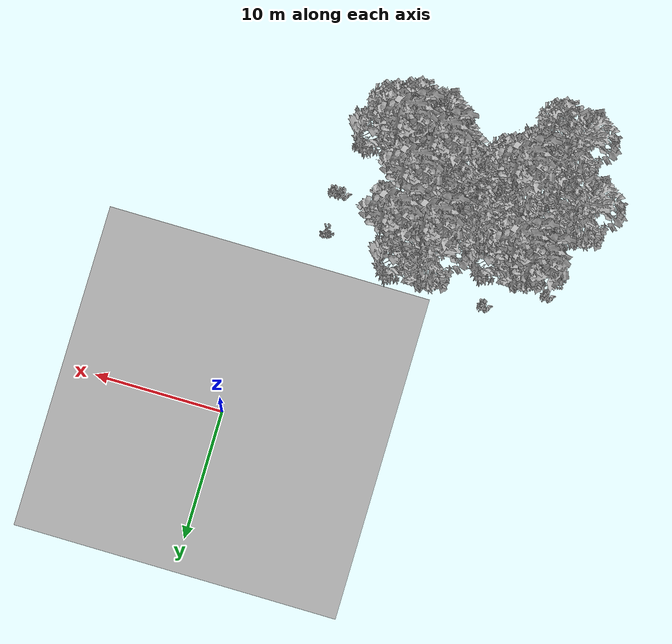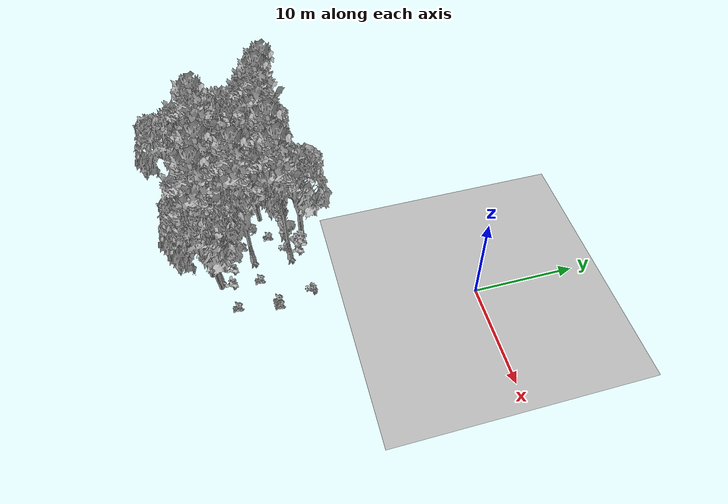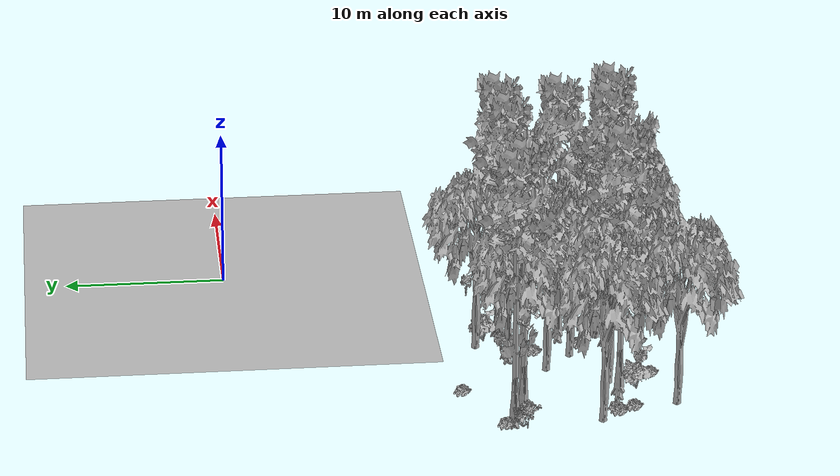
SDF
<sdf version="1.7">
 <world name="default">
  <model name="ground_plane">
   <static>1</static>
   <link name="link">
    <collision name="collision">
     <pose>-50 0 0 0 -0 0</pose>
     <geometry><plane><normal>0 0 1</normal><size>80 80</size></plane></geometry>
     <surface><contact><ode><min_depth>0.01</min_depth><max_vel>0</max_vel></ode></contact></surface>
    </collision>
    <visual name="grass">
     <cast_shadows>0</cast_shadows>
     <geometry>
      <mesh>
       <scale>0.46714285714285714 0.46714285714285714 0.1</scale>
       <uri>file://grass_plane/meshes/grass_plane.dae</uri>
      </mesh>
     </geometry>
    </visual>
   </link>
  </model>
  <model name="Tree 24">
   <static>1</static>
   <pose>-9.1710137024636 -20.092503621089026 0 1.57079 -0 0</pose>
   <link name="link">
    <collision name="collision">
     <geometry><mesh><scale>3.5 5 3.5</scale><uri>model://tree_9/meshes/tree_9.obj</uri></mesh></geometry>
    </collision>
    <visual name="visual">
     <geometry><mesh><scale>3.5 5 3.5</scale><uri>model://tree_9/meshes/tree_9.obj</uri></mesh></geometry>
    </visual>
   </link>
  </model>
  <model name="Tree 33">
   <static>1</static>
   <pose>-12.64890907517755 -20.355917272842632 0 1.57079 -0 0</pose>
   <link name="link">
    <collision name="collision">
     <geometry><mesh><scale>3.5 5 3.5</scale><uri>model://tree_2/meshes/tree_2.obj</uri></mesh></geometry>
    </collision>
    <visual name="visual">
     <geometry><mesh><scale>3.5 5 3.5</scale><uri>model://tree_2/meshes/tree_2.obj</uri></mesh></geometry>
    </visual>
   </link>
  </model>
  <model name="Tree 41">
   <static>1</static>
   <pose>-11.029143360589938 -14.790157387596643 0 1.57079 -0 0</pose>
   <link name="link">
    <collision name="collision">
     <geometry><mesh><scale>3.5 5 3.5</scale><uri>model://tree_2/meshes/tree_2.obj</uri></mesh></geometry>
    </collision>
    <visual name="visual">
     <geometry><mesh><scale>3.5 5 3.5</scale><uri>model://tree_2/meshes/tree_2.obj</uri></mesh></geometry>
    </visual>
   </link>
  </model>
  <model name="Tree 58">
   <static>1</static>
   <pose>-17.801461311813856 -16.740431640775615 0 1.57079 -0 0</pose>
   <link name="link">
    <collision name="collision">
     <geometry><mesh><scale>3.5 5 3.5</scale><uri>model://tree_2/meshes/tree_2.obj</uri></mesh></geometry>
    </collision>
    <visual name="visual">
     <geometry><mesh><scale>3.5 5 3.5</scale><uri>model://tree_2/meshes/tree_2.obj</uri></mesh></geometry>
    </visual>
   </link>
  </model>
  <model name="Tree 79">
   <static>1</static>
   <pose>-8.572607722709776 -24.250330869876954 0 1.57079 -0 0</pose>
   <link name="link">
    <collision name="collision">
     <geometry><mesh><scale>3.5 5 3.5</scale><uri>model://tree_2/meshes/tree_2.obj</uri></mesh></geometry>
    </collision>
    <visual name="visual">
     <geometry><mesh><scale>3.5 5 3.5</scale><uri>model://tree_2/meshes/tree_2.obj</uri></mesh></geometry>
    </visual>
   </link>
  </model>
  <model name="Tree 87">
   <static>1</static>
   <pose>-6.894416446961063 -23.557428661342517 0 1.57079 -0 0</pose>
   <link name="link">
    <collision name="collision">
     <geometry><mesh><scale>3.5 5 3.5</scale><uri>model://tree_2/meshes/tree_2.obj</uri></mesh></geometry>
    </collision>
    <visual name="visual">
     <geometry><mesh><scale>3.5 5 3.5</scale><uri>model://tree_2/meshes/tree_2.obj</uri></mesh></geometry>
    </visual>
   </link>
  </model>
  <model name="Tree 101">
   <static>1</static>
   <pose>-9.33557659200272 -23.09014046987345 0 1.57079 -0 0</pose>
   <link name="link">
    <collision name="collision">
     <geometry><mesh><scale>3.5 5 3.5</scale><uri>model://tree_2/meshes/tree_2.obj</uri></mesh></geometry>
    </collision>
    <visual name="visual">
     <geometry><mesh><scale>3.5 5 3.5</scale><uri>model://tree_2/meshes/tree_2.obj</uri></mesh></geometry>
    </visual>
   </link>
  </model>
  <model name="Tree 102">
   <static>1</static>
   <pose>-14.39660218122275 -18.684624331175456 0 1.57079 -0 0</pose>
   <link name="link">
    <collision name="collision">
     <geometry><mesh><scale>3.5 5 3.5</scale><uri>model://tree_2/meshes/tree_2.obj</uri></mesh></geometry>
    </collision>
    <visual name="visual">
     <geometry><mesh><scale>3.5 5 3.5</scale><uri>model://tree_2/meshes/tree_2.obj</uri></mesh></geometry>
    </visual>
   </link>
  </model>
  <model name="Tree 117">
   <static>1</static>
   <pose>-19.390288860899474 -25.796275933956878 0 1.57079 -0 0</pose>
   <link name="link">
    <collision name="collision">
     <geometry><mesh><scale>3.5 5 3.5</scale><uri>model://tree_2/meshes/tree_2.obj</uri></mesh></geometry>
    </collision>
    <visual name="visual">
     <geometry><mesh><scale>3.5 5 3.5</scale><uri>model://tree_2/meshes/tree_2.obj</uri></mesh></geometry>
    </visual>
   </link>
  </model>
  <model name="Tree 231">
   <static>1</static>
   <pose>-19.99678554687011 -15.983065546485939 0 1.57079 -0 0</pose>
   <link name="link">
    <collision name="collision">
     <geometry><mesh><scale>3.5 5 3.5</scale><uri>model://tree_9/meshes/tree_9.obj</uri></mesh></geometry>
    </collision>
    <visual name="visual">
     <geometry><mesh><scale>3.5 5 3.5</scale><uri>model://tree_9/meshes/tree_9.obj</uri></mesh></geometry>
    </visual>
   </link>
  </model>
  <model name="Tree 250">
   <static>1</static>
   <pose>-10.275904104290575 -22.325601694712045 0 1.57079 -0 0</pose>
   <link name="link">
    <collision name="collision">
     <geometry><mesh><scale>3.5 5 3.5</scale><uri>model://tree_2/meshes/tree_2.obj</uri></mesh></geometry>
    </collision>
    <visual name="visual">
     <geometry><mesh><scale>3.5 5 3.5</scale><uri>model://tree_2/meshes/tree_2.obj</uri></mesh></geometry>
    </visual>
   </link>
  </model>
  <model name="Tree 270">
   <static>1</static>
   <pose>-8.78503379170252 -23.611832265559343 0 1.57079 -0 0</pose>
   <link name="link">
    <collision name="collision">
     <geometry><mesh><scale>3.5 5 3.5</scale><uri>model://tree_2/meshes/tree_2.obj</uri></mesh></geometry>
    </collision>
    <visual name="visual">
     <geometry><mesh><scale>3.5 5 3.5</scale><uri>model://tree_2/meshes/tree_2.obj</uri></mesh></geometry>
    </visual>
   </link>
  </model>
  <model name="Tree 294">
   <static>1</static>
   <pose>-8.633826099618393 -16.468890223261717 0 1.57079 -0 0</pose>
   <link name="link">
    <collision name="collision">
     <geometry><mesh><scale>3.5 5 3.5</scale><uri>model://tree_9/meshes/tree_9.obj</uri></mesh></geometry>
    </collision>
    <visual name="visual">
     <geometry><mesh><scale>3.5 5 3.5</scale><uri>model://tree_9/meshes/tree_9.obj</uri></mesh></geometry>
    </visual>
   </link>
  </model>
  <model name="Tree 308">
   <static>1</static>
   <pose>-16.391896037122933 -22.16237967217836 0 1.57079 -0 0</pose>
   <link name="link">
    <collision name="collision">
     <geometry><mesh><scale>3.5 5 3.5</scale><uri>model://tree_2/meshes/tree_2.obj</uri></mesh></geometry>
    </collision>
    <visual name="visual">
     <geometry><mesh><scale>3.5 5 3.5</scale><uri>model://tree_2/meshes/tree_2.obj</uri></mesh></geometry>
    </visual>
   </link>
  </model>
  <model name="Tree 321">
   <static>1</static>
   <pose>-11.704759045104382 -16.664298390850778 0 1.57079 -0 0</pose>
   <link name="link">
    <collision name="collision">
     <geometry><mesh><scale>3.5 5 3.5</scale><uri>model://tree_9/meshes/tree_9.obj</uri></mesh></geometry>
    </collision>
    <visual name="visual">
     <geometry><mesh><scale>3.5 5 3.5</scale><uri>model://tree_9/meshes/tree_9.obj</uri></mesh></geometry>
    </visual>
   </link>
  </model>
  <model name="Tree 469">
   <static>1</static>
   <pose>-21.16434411884996 -21.09649220120322 0 1.57079 -0 0</pose>
   <link name="link">
    <collision name="collision">
     <geometry><mesh><scale>3.5 5 3.5</scale><uri>model://tree_2/meshes/tree_2.obj</uri></mesh></geometry>
    </collision>
    <visual name="visual">
     <geometry><mesh><scale>3.5 5 3.5</scale><uri>model://tree_2/meshes/tree_2.obj</uri></mesh></geometry>
    </visual>
   </link>
  </model>
  <model name="Tree 512">
   <static>1</static>
   <pose>-7.740288548615414 -23.51354434490979 0 1.57079 -0 0</pose>
   <link name="link">
    <collision name="collision">
     <geometry><mesh><scale>3.5 5 3.5</scale><uri>model://tree_9/meshes/tree_9.obj</uri></mesh></geometry>
    </collision>
    <visual name="visual">
     <geometry><mesh><scale>3.5 5 3.5</scale><uri>model://tree_9/meshes/tree_9.obj</uri></mesh></geometry>
    </visual>
   </link>
  </model>
  <model name="Tree 521">
   <static>1</static>
   <pose>-18.538329725983395 -16.705764341924194 0 1.57079 -0 0</pose>
   <link name="link">
    <collision name="collision">
     <geometry><mesh><scale>3.5 5 3.5</scale><uri>model://tree_9/meshes/tree_9.obj</uri></mesh></geometry>
    </collision>
    <visual name="visual">
     <geometry><mesh><scale>3.5 5 3.5</scale><uri>model://tree_9/meshes/tree_9.obj</uri></mesh></geometry>
    </visual>
   </link>
  </model>
  <model name="Tree 553">
   <static>1</static>
   <pose>-10.570265423997004 -22.866595124675282 0 1.57079 -0 0</pose>
   <link name="link">
    <collision name="collision">
     <geometry><mesh><scale>3.5 5 3.5</scale><uri>model://tree_9/meshes/tree_9.obj</uri></mesh></geometry>
    </collision>
    <visual name="visual">
     <geometry><mesh><scale>3.5 5 3.5</scale><uri>model://tree_9/meshes/tree_9.obj</uri></mesh></geometry>
    </visual>
   </link>
  </model>
  <model name="Tree 590">
   <static>1</static>
   <pose>-16.998174350092075 -22.673781446632127 0 1.57079 -0 0</pose>
   <link name="link">
    <collision name="collision">
     <geometry><mesh><scale>3.5 5 3.5</scale><uri>model://tree_9/meshes/tree_9.obj</uri></mesh></geometry>
    </collision>
    <visual name="visual">
     <geometry><mesh><scale>3.5 5 3.5</scale><uri>model://tree_9/meshes/tree_9.obj</uri></mesh></geometry>
    </visual>
   </link>
  </model>
  <model name="Bush 46">
   <static>1</static>
   <pose>-6.3153332011852115 -22.399869395493177 0 1.57079 -0 0</pose>
   <link name="link">
    <collision name="collision">
     <geometry><mesh><scale>2 2 2</scale><uri>model://bush_0/meshes/bush_0.obj</uri></mesh></geometry>
     <surface><contact><collide_without_contact>false</collide_without_contact></contact></surface>
    </collision>
    <visual name="visual">
     <geometry><mesh><scale>2 2 2</scale><uri>model://bush_0/meshes/bush_0.obj</uri></mesh></geometry>
    </visual>
   </link>
  </model>
  <model name="Bush 83">
   <static>1</static>
   <pose>-19.57994780664743 -22.162338095185312 0 1.57079 -0 0</pose>
   <link name="link">
    <collision name="collision">
     <geometry><mesh><scale>2 2 2</scale><uri>model://bush_2/meshes/bush_2.obj</uri></mesh></geometry>
     <surface><contact><collide_without_contact>false</collide_without_contact></contact></surface>
    </collision>
    <visual name="visual">
     <geometry><mesh><scale>2 2 2</scale><uri>model://bush_2/meshes/bush_2.obj</uri></mesh></geometry>
    </visual>
   </link>
  </model>
  <model name="Bush 86">
   <static>1</static>
   <pose>-7.996258949827276 -22.132548166640618 0 1.57079 -0 0</pose>
   <link name="link">
    <collision name="collision">
     <geometry><mesh><scale>2 2 2</scale><uri>model://bush_0/meshes/bush_0.obj</uri></mesh></geometry>
     <surface><contact><collide_without_contact>false</collide_without_contact></contact></surface>
    </collision>
    <visual name="visual">
     <geometry><mesh><scale>2 2 2</scale><uri>model://bush_0/meshes/bush_0.obj</uri></mesh></geometry>
    </visual>
   </link>
  </model>
  <model name="Bush 110">
   <static>1</static>
   <pose>-19.479811894968996 -23.231952553138477 0 1.57079 -0 0</pose>
   <link name="link">
    <collision name="collision">
     <geometry><mesh><scale>2 2 2</scale><uri>model://bush_2/meshes/bush_2.obj</uri></mesh></geometry>
     <surface><contact><collide_without_contact>false</collide_without_contact></contact></surface>
    </collision>
    <visual name="visual">
     <geometry><mesh><scale>2 2 2</scale><uri>model://bush_2/meshes/bush_2.obj</uri></mesh></geometry>
    </visual>
   </link>
  </model>
  <model name="Bush 132">
   <static>1</static>
   <pose>-11.154719339024929 -20.96943907301201 0 1.57079 -0 0</pose>
   <link name="link">
    <collision name="collision">
     <geometry><mesh><scale>2 2 2</scale><uri>model://bush_2/meshes/bush_2.obj</uri></mesh></geometry>
     <surface><contact><collide_without_contact>false</collide_without_contact></contact></surface>
    </collision>
    <visual name="visual">
     <geometry><mesh><scale>2 2 2</scale><uri>model://bush_2/meshes/bush_2.obj</uri></mesh></geometry>
    </visual>
   </link>
  </model>
  <model name="Bush 149">
   <static>1</static>
   <pose>-4.22271195580209 -22.367515695310345 0 1.57079 -0 0</pose>
   <link name="link">
    <collision name="collision">
     <geometry><mesh><scale>2 2 2</scale><uri>model://bush_2/meshes/bush_2.obj</uri></mesh></geometry>
     <surface><contact><collide_without_contact>false</collide_without_contact></contact></surface>
    </collision>
    <visual name="visual">
     <geometry><mesh><scale>2 2 2</scale><uri>model://bush_2/meshes/bush_2.obj</uri></mesh></geometry>
    </visual>
   </link>
  </model>
  <model name="Bush 179">
   <static>1</static>
   <pose>-15.320579386284287 -24.86145719086857 0 1.57079 -0 0</pose>
   <link name="link">
    <collision name="collision">
     <geometry><mesh><scale>2 2 2</scale><uri>model://bush_2/meshes/bush_2.obj</uri></mesh></geometry>
     <surface><contact><collide_without_contact>false</collide_without_contact></contact></surface>
    </collision>
    <visual name="visual">
     <geometry><mesh><scale>2 2 2</scale><uri>model://bush_2/meshes/bush_2.obj</uri></mesh></geometry>
    </visual>
   </link>
  </model>
  <model name="Bush 187">
   <static>1</static>
   <pose>-3.7083628858405078 -15.057437454211573 0 1.57079 -0 0</pose>
   <link name="link">
    <collision name="collision">
     <geometry><mesh><scale>2 2 2</scale><uri>model://bush_5/meshes/bush_5.obj</uri></mesh></geometry>
     <surface><contact><collide_without_contact>false</collide_without_contact></contact></surface>
    </collision>
    <visual name="visual">
     <geometry><mesh><scale>2 2 2</scale><uri>model://bush_5/meshes/bush_5.obj</uri></mesh></geometry>
    </visual>
   </link>
  </model>
  <model name="Bush 200">
   <static>1</static>
   <pose>-20.007395988574366 -22.2660796173089 0 1.57079 -0 0</pose>
   <link name="link">
    <collision name="collision">
     <geometry><mesh><scale>2 2 2</scale><uri>model://bush_2/meshes/bush_2.obj</uri></mesh></geometry>
     <surface><contact><collide_without_contact>false</collide_without_contact></contact></surface>
    </collision>
    <visual name="visual">
     <geometry><mesh><scale>2 2 2</scale><uri>model://bush_2/meshes/bush_2.obj</uri></mesh></geometry>
    </visual>
   </link>
  </model>
  <model name="Bush 207">
   <static>1</static>
   <pose>-11.369895861268638 -16.294120605426965 0 1.57079 -0 0</pose>
   <link name="link">
    <collision name="collision">
     <geometry><mesh><scale>2 2 2</scale><uri>model://bush_0/meshes/bush_0.obj</uri></mesh></geometry>
     <surface><contact><collide_without_contact>false</collide_without_contact></contact></surface>
    </collision>
    <visual name="visual">
     <geometry><mesh><scale>2 2 2</scale><uri>model://bush_0/meshes/bush_0.obj</uri></mesh></geometry>
    </visual>
   </link>
  </model>
  <model name="Bush 254">
   <static>1</static>
   <pose>-8.703942573176779 -15.546334479793344 0 1.57079 -0 0</pose>
   <link name="link">
    <collision name="collision">
     <geometry><mesh><scale>2 2 2</scale><uri>model://bush_0/meshes/bush_0.obj</uri></mesh></geometry>
     <surface><contact><collide_without_contact>false</collide_without_contact></contact></surface>
    </collision>
    <visual name="visual">
     <geometry><mesh><scale>2 2 2</scale><uri>model://bush_0/meshes/bush_0.obj</uri></mesh></geometry>
    </visual>
   </link>
  </model>
  <model name="Bush 270">
   <static>1</static>
   <pose>-11.868172113425775 -18.254348389613256 0 1.57079 -0 0</pose>
   <link name="link">
    <collision name="collision">
     <geometry><mesh><scale>2 2 2</scale><uri>model://bush_2/meshes/bush_2.obj</uri></mesh></geometry>
     <surface><contact><collide_without_contact>false</collide_without_contact></contact></surface>
    </collision>
    <visual name="visual">
     <geometry><mesh><scale>2 2 2</scale><uri>model://bush_2/meshes/bush_2.obj</uri></mesh></geometry>
    </visual>
   </link>
  </model>
  <model name="Bush 287">
   <static>1</static>
   <pose>-3.443582057321642 -18.499272465327312 0 1.57079 -0 0</pose>
   <link name="link">
    <collision name="collision">
     <geometry><mesh><scale>2 2 2</scale><uri>model://bush_2/meshes/bush_2.obj</uri></mesh></geometry>
     <surface><contact><collide_without_contact>false</collide_without_contact></contact></surface>
    </collision>
    <visual name="visual">
     <geometry><mesh><scale>2 2 2</scale><uri>model://bush_2/meshes/bush_2.obj</uri></mesh></geometry>
    </visual>
   </link>
  </model>
  <model name="Bush 298">
   <static>1</static>
   <pose>-6.813456797911812 -19.86442502382389 0 1.57079 -0 0</pose>
   <link name="link">
    <collision name="collision">
     <geometry><mesh><scale>2 2 2</scale><uri>model://bush_2/meshes/bush_2.obj</uri></mesh></geometry>
     <surface><contact><collide_without_contact>false</collide_without_contact></contact></surface>
    </collision>
    <visual name="visual">
     <geometry><mesh><scale>2 2 2</scale><uri>model://bush_2/meshes/bush_2.obj</uri></mesh></geometry>
    </visual>
   </link>
  </model>
  <model name="Bush 332">
   <static>1</static>
   <pose>-19.051655904329554 -16.898214775745668 0 1.57079 -0 0</pose>
   <link name="link">
    <collision name="collision">
     <geometry><mesh><scale>2 2 2</scale><uri>model://bush_2/meshes/bush_2.obj</uri></mesh></geometry>
     <surface><contact><collide_without_contact>false</collide_without_contact></contact></surface>
    </collision>
    <visual name="visual">
     <geometry><mesh><scale>2 2 2</scale><uri>model://bush_2/meshes/bush_2.obj</uri></mesh></geometry>
    </visual>
   </link>
  </model>
  <model name="Bush 390">
   <static>1</static>
   <pose>-16.697687563815244 -13.319450083240199 0 1.57079 -0 0</pose>
   <link name="link">
    <collision name="collision">
     <geometry><mesh><scale>2 2 2</scale><uri>model://bush_2/meshes/bush_2.obj</uri></mesh></geometry>
     <surface><contact><collide_without_contact>false</collide_without_contact></contact></surface>
    </collision>
    <visual name="visual">
     <geometry><mesh><scale>2 2 2</scale><uri>model://bush_2/meshes/bush_2.obj</uri></mesh></geometry>
    </visual>
   </link>
  </model>
  <model name="Bush 397">
   <static>1</static>
   <pose>-4.072858521388021 -18.5213250744542 0 1.57079 -0 0</pose>
   <link name="link">
    <collision name="collision">
     <geometry><mesh><scale>2 2 2</scale><uri>model://bush_2/meshes/bush_2.obj</uri></mesh></geometry>
     <surface><contact><collide_without_contact>false</collide_without_contact></contact></surface>
    </collision>
    <visual name="visual">
     <geometry><mesh><scale>2 2 2</scale><uri>model://bush_2/meshes/bush_2.obj</uri></mesh></geometry>
    </visual>
   </link>
  </model>
  <model name="Bush 403">
   <static>1</static>
   <pose>-21.26836372167575 -16.32165990358324 0 1.57079 -0 0</pose>
   <link name="link">
    <collision name="collision">
     <geometry><mesh><scale>2 2 2</scale><uri>model://bush_4/meshes/bush_4.obj</uri></mesh></geometry>
     <surface><contact><collide_without_contact>false</collide_without_contact></contact></surface>
    </collision>
    <visual name="visual">
     <geometry><mesh><scale>2 2 2</scale><uri>model://bush_4/meshes/bush_4.obj</uri></mesh></geometry>
    </visual>
   </link>
  </model>
  <model name="Bush 437">
   <static>1</static>
   <pose>-9.115907786620244 -16.637098245116803 0 1.57079 -0 0</pose>
   <link name="link">
    <collision name="collision">
     <geometry><mesh><scale>2 2 2</scale><uri>model://bush_5/meshes/bush_5.obj</uri></mesh></geometry>
     <surface><contact><collide_without_contact>false</collide_without_contact></contact></surface>
    </collision>
    <visual name="visual">
     <geometry><mesh><scale>2 2 2</scale><uri>model://bush_5/meshes/bush_5.obj</uri></mesh></geometry>
    </visual>
   </link>
  </model>
  <model name="Bush 528">
   <static>1</static>
   <pose>-10.084194409398595 -15.368437634282344 0 1.57079 -0 0</pose>
   <link name="link">
    <collision name="collision">
     <geometry><mesh><scale>2 2 2</scale><uri>model://bush_1/meshes/bush_1.obj</uri></mesh></geometry>
     <surface><contact><collide_without_contact>false</collide_without_contact></contact></surface>
    </collision>
    <visual name="visual">
     <geometry><mesh><scale>2 2 2</scale><uri>model://bush_1/meshes/bush_1.obj</uri></mesh></geometry>
    </visual>
   </link>
  </model>
  <model name="Bush 536">
   <static>1</static>
   <pose>-11.043925687425435 -24.868726531338705 0 1.57079 -0 0</pose>
   <link name="link">
    <collision name="collision">
     <geometry><mesh><scale>2 2 2</scale><uri>model://bush_2/meshes/bush_2.obj</uri></mesh></geometry>
     <surface><contact><collide_without_contact>false</collide_without_contact></contact></surface>
    </collision>
    <visual name="visual">
     <geometry><mesh><scale>2 2 2</scale><uri>model://bush_2/meshes/bush_2.obj</uri></mesh></geometry>
    </visual>
   </link>
  </model>
  <model name="Bush 543">
   <static>1</static>
   <pose>-17.160635337974952 -23.698189006989132 0 1.57079 -0 0</pose>
   <link name="link">
    <collision name="collision">
     <geometry><mesh><scale>2 2 2</scale><uri>model://bush_1/meshes/bush_1.obj</uri></mesh></geometry>
     <surface><contact><collide_without_contact>false</collide_without_contact></contact></surface>
    </collision>
    <visual name="visual">
     <geometry><mesh><scale>2 2 2</scale><uri>model://bush_1/meshes/bush_1.obj</uri></mesh></geometry>
    </visual>
   </link>
  </model>
  <model name="Bush 573">
   <static>1</static>
   <pose>-21.549623694312427 -16.537833743088406 0 1.57079 -0 0</pose>
   <link name="link">
    <collision name="collision">
     <geometry><mesh><scale>2 2 2</scale><uri>model://bush_5/meshes/bush_5.obj</uri></mesh></geometry>
     <surface><contact><collide_without_contact>false</collide_without_contact></contact></surface>
    </collision>
    <visual name="visual">
     <geometry><mesh><scale>2 2 2</scale><uri>model://bush_5/meshes/bush_5.obj</uri></mesh></geometry>
    </visual>
   </link>
  </model>
  <model name="Bush 603">
   <static>1</static>
   <pose>-14.395555707860801 -24.385068532329946 0 1.57079 -0 0</pose>
   <link name="link">
    <collision name="collision">
     <geometry><mesh><scale>2 2 2</scale><uri>model://bush_0/meshes/bush_0.obj</uri></mesh></geometry>
     <surface><contact><collide_without_contact>false</collide_without_contact></contact></surface>
    </collision>
    <visual name="visual">
     <geometry><mesh><scale>2 2 2</scale><uri>model://bush_0/meshes/bush_0.obj</uri></mesh></geometry>
    </visual>
   </link>
  </model>
  <model name="Bush 626">
   <static>1</static>
   <pose>-21.070509263128155 -15.391510312024835 0 1.57079 -0 0</pose>
   <link name="link">
    <collision name="collision">
     <geometry><mesh><scale>2 2 2</scale><uri>model://bush_2/meshes/bush_2.obj</uri></mesh></geometry>
     <surface><contact><collide_without_contact>false</collide_without_contact></contact></surface>
    </collision>
    <visual name="visual">
     <geometry><mesh><scale>2 2 2</scale><uri>model://bush_2/meshes/bush_2.obj</uri></mesh></geometry>
    </visual>
   </link>
  </model>
 </world>
</sdf>
